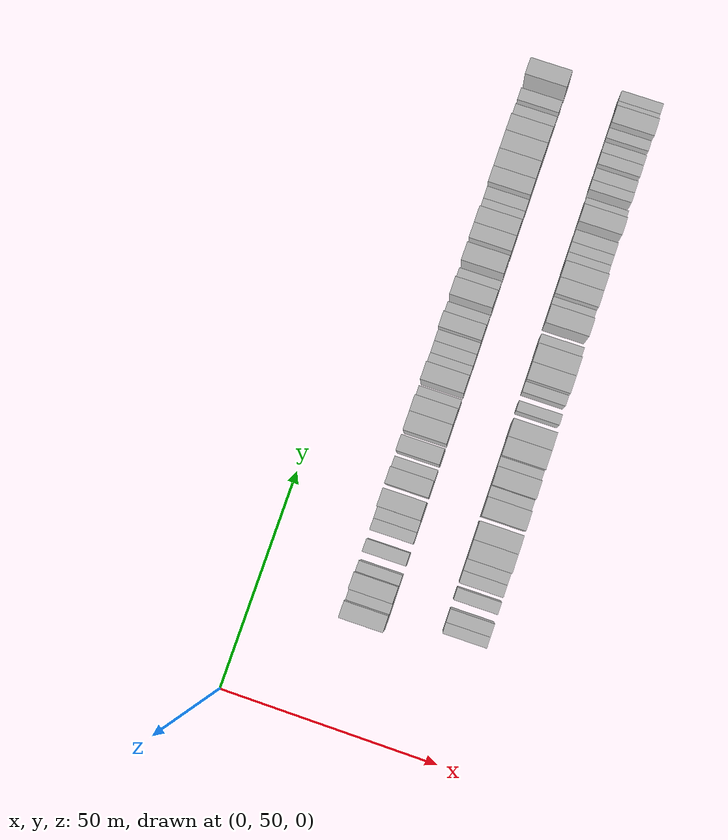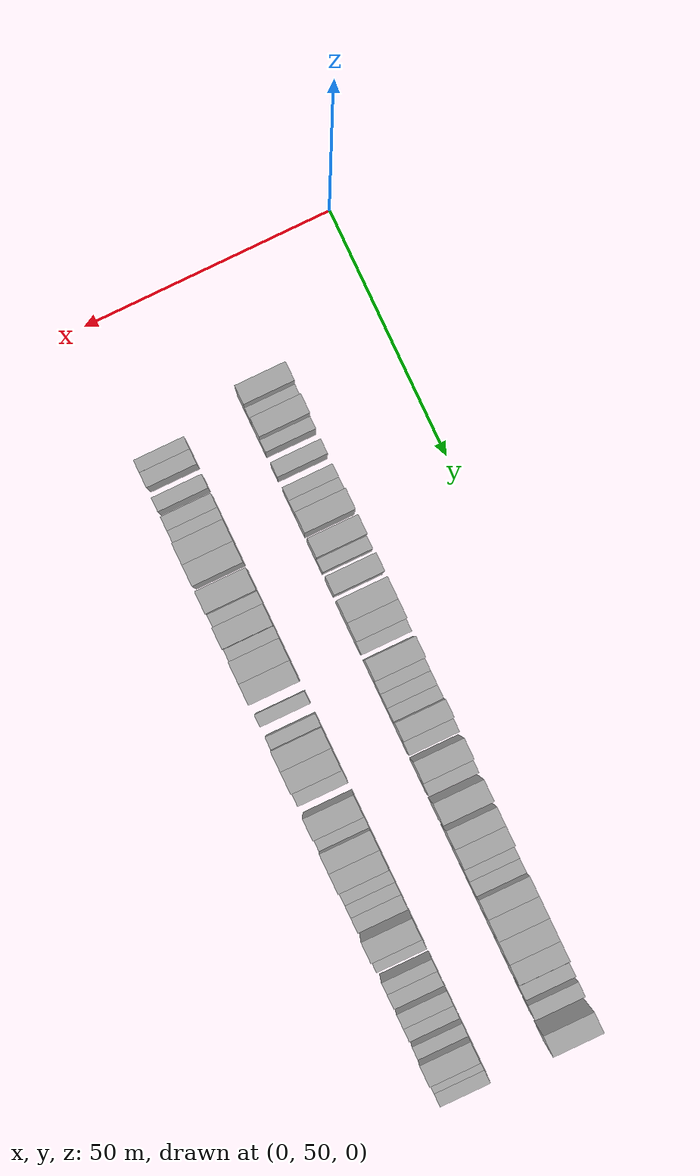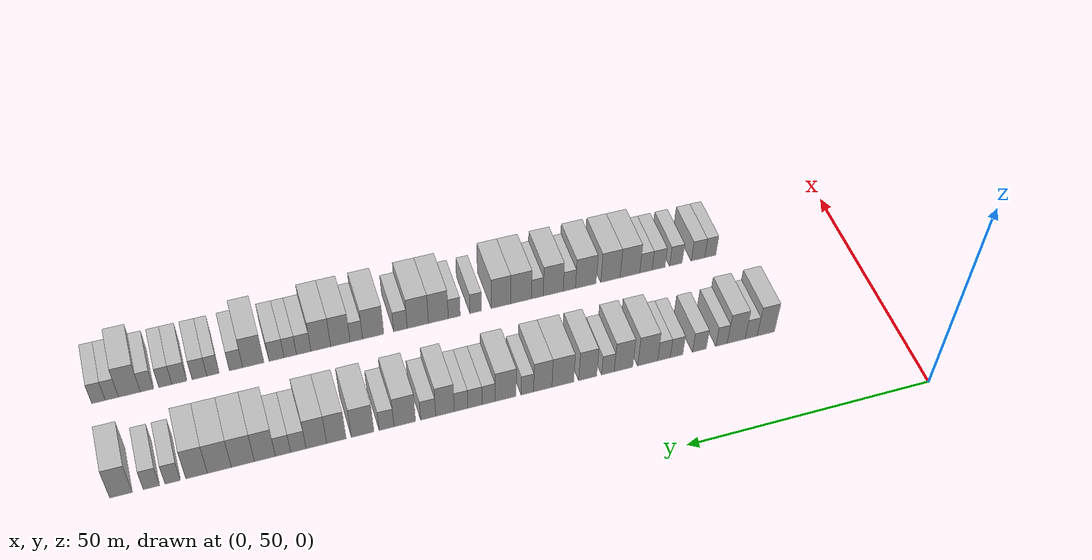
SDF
<sdf version="1.6">
 <world name="default">
  <model name="building_69">
   <static>1</static>
   <pose>25.0000 75.5488 0 0.000000 0.000000 0.000000</pose>
   <link name="link">
    <pose>0 0 4.50 0 0 0</pose>
    <collision name="collision"><geometry><box><size>10.0000 3.7149 9.0000</size></box></geometry></collision>
    <visual name="visual">
     <cast_shadows>0</cast_shadows>
     <geometry><box><size>10.0000 3.7149 9.0000</size></box></geometry>
     <material>
      <script>
       <uri>model://HANNAS_wall/materials/scripts</uri>
       <uri>model://HANNAS_wall/materials/textures</uri>
       <name>vrc/HANNAS_wall</name>
      </script>
     </material>
    </visual>
   </link>
  </model>
  <model name="building_70">
   <static>1</static>
   <pose>25.0000 78.6993 0 0.000000 0.000000 0.000000</pose>
   <link name="link">
    <pose>0 0 3.00 0 0 0</pose>
    <collision name="collision"><geometry><box><size>10.0000 2.5861 6.0000</size></box></geometry></collision>
    <visual name="visual">
     <cast_shadows>0</cast_shadows>
     <geometry><box><size>10.0000 2.5861 6.0000</size></box></geometry>
     <material>
      <script>
       <uri>model://HANNAS_wall/materials/scripts</uri>
       <uri>model://HANNAS_wall/materials/textures</uri>
       <name>vrc/HANNAS_wall</name>
      </script>
     </material>
    </visual>
   </link>
  </model>
  <model name="building_71">
   <static>1</static>
   <pose>25.0000 81.8857 0 0.000000 0.000000 0.000000</pose>
   <link name="link">
    <pose>0 0 4.50 0 0 0</pose>
    <collision name="collision"><geometry><box><size>10.0000 3.7866 9.0000</size></box></geometry></collision>
    <visual name="visual">
     <cast_shadows>0</cast_shadows>
     <geometry><box><size>10.0000 3.7866 9.0000</size></box></geometry>
     <material>
      <script>
       <uri>model://HANNAS_wall/materials/scripts</uri>
       <uri>model://HANNAS_wall/materials/textures</uri>
       <name>vrc/HANNAS_wall</name>
      </script>
     </material>
    </visual>
   </link>
  </model>
  <model name="building_72">
   <static>1</static>
   <pose>25.0000 84.9985 0 0.000000 0.000000 0.000000</pose>
   <link name="link">
    <pose>0 0 3.00 0 0 0</pose>
    <collision name="collision"><geometry><box><size>10.0000 2.4390 6.0000</size></box></geometry></collision>
    <visual name="visual">
     <cast_shadows>0</cast_shadows>
     <geometry><box><size>10.0000 2.4390 6.0000</size></box></geometry>
     <material>
      <script>
       <uri>model://HANNAS_wall/materials/scripts</uri>
       <uri>model://HANNAS_wall/materials/textures</uri>
       <name>vrc/HANNAS_wall</name>
      </script>
     </material>
    </visual>
   </link>
  </model>
  <model name="building_73">
   <static>1</static>
   <pose>25.0000 89.6909 0 0.000000 0.000000 0.000000</pose>
   <link name="link">
    <pose>0 0 3.00 0 0 0</pose>
    <collision name="collision"><geometry><box><size>10.0000 2.9460 6.0000</size></box></geometry></collision>
    <visual name="visual">
     <cast_shadows>0</cast_shadows>
     <geometry><box><size>10.0000 2.9460 6.0000</size></box></geometry>
     <material>
      <script>
       <uri>model://HANNAS_wall/materials/scripts</uri>
       <uri>model://HANNAS_wall/materials/textures</uri>
       <name>vrc/HANNAS_wall</name>
      </script>
     </material>
    </visual>
   </link>
  </model>
  <model name="building_74">
   <static>1</static>
   <pose>25.0000 94.4838 0 0.000000 0.000000 0.000000</pose>
   <link name="link">
    <pose>0 0 3.00 0 0 0</pose>
    <collision name="collision"><geometry><box><size>10.0000 2.6397 6.0000</size></box></geometry></collision>
    <visual name="visual">
     <cast_shadows>0</cast_shadows>
     <geometry><box><size>10.0000 2.6397 6.0000</size></box></geometry>
     <material>
      <script>
       <uri>model://HANNAS_wall/materials/scripts</uri>
       <uri>model://HANNAS_wall/materials/textures</uri>
       <name>vrc/HANNAS_wall</name>
      </script>
     </material>
    </visual>
   </link>
  </model>
  <model name="building_75">
   <static>1</static>
   <pose>25.0000 97.1282 0 0.000000 0.000000 0.000000</pose>
   <link name="link">
    <pose>0 0 3.00 0 0 0</pose>
    <collision name="collision"><geometry><box><size>10.0000 2.6492 6.0000</size></box></geometry></collision>
    <visual name="visual">
     <cast_shadows>0</cast_shadows>
     <geometry><box><size>10.0000 2.6492 6.0000</size></box></geometry>
     <material>
      <script>
       <uri>model://HANNAS_wall/materials/scripts</uri>
       <uri>model://HANNAS_wall/materials/textures</uri>
       <name>vrc/HANNAS_wall</name>
      </script>
     </material>
    </visual>
   </link>
  </model>
  <model name="building_76">
   <static>1</static>
   <pose>25.0000 100.5202 0 0.000000 0.000000 0.000000</pose>
   <link name="link">
    <pose>0 0 4.50 0 0 0</pose>
    <collision name="collision"><geometry><box><size>10.0000 4.1348 9.0000</size></box></geometry></collision>
    <visual name="visual">
     <cast_shadows>0</cast_shadows>
     <geometry><box><size>10.0000 4.1348 9.0000</size></box></geometry>
     <material>
      <script>
       <uri>model://HANNAS_wall/materials/scripts</uri>
       <uri>model://HANNAS_wall/materials/textures</uri>
       <name>vrc/HANNAS_wall</name>
      </script>
     </material>
    </visual>
   </link>
  </model>
  <model name="building_77">
   <static>1</static>
   <pose>25.0000 105.5133 0 0.000000 0.000000 0.000000</pose>
   <link name="link">
    <pose>0 0 4.50 0 0 0</pose>
    <collision name="collision"><geometry><box><size>10.0000 3.8513 9.0000</size></box></geometry></collision>
    <visual name="visual">
     <cast_shadows>0</cast_shadows>
     <geometry><box><size>10.0000 3.8513 9.0000</size></box></geometry>
     <material>
      <script>
       <uri>model://HANNAS_wall/materials/scripts</uri>
       <uri>model://HANNAS_wall/materials/textures</uri>
       <name>vrc/HANNAS_wall</name>
      </script>
     </material>
    </visual>
   </link>
  </model>
  <model name="building_78">
   <static>1</static>
   <pose>25.0000 108.7378 0 0.000000 0.000000 0.000000</pose>
   <link name="link">
    <pose>0 0 3.00 0 0 0</pose>
    <collision name="collision"><geometry><box><size>10.0000 2.5978 6.0000</size></box></geometry></collision>
    <visual name="visual">
     <cast_shadows>0</cast_shadows>
     <geometry><box><size>10.0000 2.5978 6.0000</size></box></geometry>
     <material>
      <script>
       <uri>model://HANNAS_wall/materials/scripts</uri>
       <uri>model://HANNAS_wall/materials/textures</uri>
       <name>vrc/HANNAS_wall</name>
      </script>
     </material>
    </visual>
   </link>
  </model>
  <model name="building_79">
   <static>1</static>
   <pose>25.0000 112.8844 0 0.000000 0.000000 0.000000</pose>
   <link name="link">
    <pose>0 0 4.50 0 0 0</pose>
    <collision name="collision"><geometry><box><size>10.0000 3.6953 9.0000</size></box></geometry></collision>
    <visual name="visual">
     <cast_shadows>0</cast_shadows>
     <geometry><box><size>10.0000 3.6953 9.0000</size></box></geometry>
     <material>
      <script>
       <uri>model://HANNAS_wall/materials/scripts</uri>
       <uri>model://HANNAS_wall/materials/textures</uri>
       <name>vrc/HANNAS_wall</name>
      </script>
     </material>
    </visual>
   </link>
  </model>
  <model name="building_80">
   <static>1</static>
   <pose>25.0000 117.9491 0 0.000000 0.000000 0.000000</pose>
   <link name="link">
    <pose>0 0 4.50 0 0 0</pose>
    <collision name="collision"><geometry><box><size>10.0000 4.4341 9.0000</size></box></geometry></collision>
    <visual name="visual">
     <cast_shadows>0</cast_shadows>
     <geometry><box><size>10.0000 4.4341 9.0000</size></box></geometry>
     <material>
      <script>
       <uri>model://HANNAS_wall/materials/scripts</uri>
       <uri>model://HANNAS_wall/materials/textures</uri>
       <name>vrc/HANNAS_wall</name>
      </script>
     </material>
    </visual>
   </link>
  </model>
  <model name="building_81">
   <static>1</static>
   <pose>25.0000 122.0289 0 0.000000 0.000000 0.000000</pose>
   <link name="link">
    <pose>0 0 4.50 0 0 0</pose>
    <collision name="collision"><geometry><box><size>10.0000 3.7254 9.0000</size></box></geometry></collision>
    <visual name="visual">
     <cast_shadows>0</cast_shadows>
     <geometry><box><size>10.0000 3.7254 9.0000</size></box></geometry>
     <material>
      <script>
       <uri>model://HANNAS_wall/materials/scripts</uri>
       <uri>model://HANNAS_wall/materials/textures</uri>
       <name>vrc/HANNAS_wall</name>
      </script>
     </material>
    </visual>
   </link>
  </model>
  <model name="building_82">
   <static>1</static>
   <pose>25.0000 125.1453 0 0.000000 0.000000 0.000000</pose>
   <link name="link">
    <pose>0 0 3.00 0 0 0</pose>
    <collision name="collision"><geometry><box><size>10.0000 2.5073 6.0000</size></box></geometry></collision>
    <visual name="visual">
     <cast_shadows>0</cast_shadows>
     <geometry><box><size>10.0000 2.5073 6.0000</size></box></geometry>
     <material>
      <script>
       <uri>model://HANNAS_wall/materials/scripts</uri>
       <uri>model://HANNAS_wall/materials/textures</uri>
       <name>vrc/HANNAS_wall</name>
      </script>
     </material>
    </visual>
   </link>
  </model>
  <model name="building_83">
   <static>1</static>
   <pose>25.0000 129.4987 0 0.000000 0.000000 0.000000</pose>
   <link name="link">
    <pose>0 0 4.50 0 0 0</pose>
    <collision name="collision"><geometry><box><size>10.0000 4.1995 9.0000</size></box></geometry></collision>
    <visual name="visual">
     <cast_shadows>0</cast_shadows>
     <geometry><box><size>10.0000 4.1995 9.0000</size></box></geometry>
     <material>
      <script>
       <uri>model://HANNAS_wall/materials/scripts</uri>
       <uri>model://HANNAS_wall/materials/textures</uri>
       <name>vrc/HANNAS_wall</name>
      </script>
     </material>
    </visual>
   </link>
  </model>
  <model name="building_84">
   <static>1</static>
   <pose>25.0000 132.9081 0 0.000000 0.000000 0.000000</pose>
   <link name="link">
    <pose>0 0 3.00 0 0 0</pose>
    <collision name="collision"><geometry><box><size>10.0000 2.6191 6.0000</size></box></geometry></collision>
    <visual name="visual">
     <cast_shadows>0</cast_shadows>
     <geometry><box><size>10.0000 2.6191 6.0000</size></box></geometry>
     <material>
      <script>
       <uri>model://HANNAS_wall/materials/scripts</uri>
       <uri>model://HANNAS_wall/materials/textures</uri>
       <name>vrc/HANNAS_wall</name>
      </script>
     </material>
    </visual>
   </link>
  </model>
  <model name="building_85">
   <static>1</static>
   <pose>25.0000 135.6210 0 0.000000 0.000000 0.000000</pose>
   <link name="link">
    <pose>0 0 3.00 0 0 0</pose>
    <collision name="collision"><geometry><box><size>10.0000 2.8068 6.0000</size></box></geometry></collision>
    <visual name="visual">
     <cast_shadows>0</cast_shadows>
     <geometry><box><size>10.0000 2.8068 6.0000</size></box></geometry>
     <material>
      <script>
       <uri>model://HANNAS_wall/materials/scripts</uri>
       <uri>model://HANNAS_wall/materials/textures</uri>
       <name>vrc/HANNAS_wall</name>
      </script>
     </material>
    </visual>
   </link>
  </model>
  <model name="building_86">
   <static>1</static>
   <pose>25.0000 138.3724 0 0.000000 0.000000 0.000000</pose>
   <link name="link">
    <pose>0 0 3.00 0 0 0</pose>
    <collision name="collision"><geometry><box><size>10.0000 2.6960 6.0000</size></box></geometry></collision>
    <visual name="visual">
     <cast_shadows>0</cast_shadows>
     <geometry><box><size>10.0000 2.6960 6.0000</size></box></geometry>
     <material>
      <script>
       <uri>model://HANNAS_wall/materials/scripts</uri>
       <uri>model://HANNAS_wall/materials/textures</uri>
       <name>vrc/HANNAS_wall</name>
      </script>
     </material>
    </visual>
   </link>
  </model>
  <model name="building_87">
   <static>1</static>
   <pose>25.0000 141.5577 0 0.000000 0.000000 0.000000</pose>
   <link name="link">
    <pose>0 0 4.50 0 0 0</pose>
    <collision name="collision"><geometry><box><size>10.0000 3.6747 9.0000</size></box></geometry></collision>
    <visual name="visual">
     <cast_shadows>0</cast_shadows>
     <geometry><box><size>10.0000 3.6747 9.0000</size></box></geometry>
     <material>
      <script>
       <uri>model://HANNAS_wall/materials/scripts</uri>
       <uri>model://HANNAS_wall/materials/textures</uri>
       <name>vrc/HANNAS_wall</name>
      </script>
     </material>
    </visual>
   </link>
  </model>
  <model name="building_88">
   <static>1</static>
   <pose>25.0000 144.8719 0 0.000000 0.000000 0.000000</pose>
   <link name="link">
    <pose>0 0 3.00 0 0 0</pose>
    <collision name="collision"><geometry><box><size>10.0000 2.9536 6.0000</size></box></geometry></collision>
    <visual name="visual">
     <cast_shadows>0</cast_shadows>
     <geometry><box><size>10.0000 2.9536 6.0000</size></box></geometry>
     <material>
      <script>
       <uri>model://HANNAS_wall/materials/scripts</uri>
       <uri>model://HANNAS_wall/materials/textures</uri>
       <name>vrc/HANNAS_wall</name>
      </script>
     </material>
    </visual>
   </link>
  </model>
  <model name="building_89">
   <static>1</static>
   <pose>25.0000 149.4651 0 0.000000 0.000000 0.000000</pose>
   <link name="link">
    <pose>0 0 4.50 0 0 0</pose>
    <collision name="collision"><geometry><box><size>10.0000 4.2328 9.0000</size></box></geometry></collision>
    <visual name="visual">
     <cast_shadows>0</cast_shadows>
     <geometry><box><size>10.0000 4.2328 9.0000</size></box></geometry>
     <material>
      <script>
       <uri>model://HANNAS_wall/materials/scripts</uri>
       <uri>model://HANNAS_wall/materials/textures</uri>
       <name>vrc/HANNAS_wall</name>
      </script>
     </material>
    </visual>
   </link>
  </model>
  <model name="building_90">
   <static>1</static>
   <pose>25.0000 153.0241 0 0.000000 0.000000 0.000000</pose>
   <link name="link">
    <pose>0 0 3.00 0 0 0</pose>
    <collision name="collision"><geometry><box><size>10.0000 2.8851 6.0000</size></box></geometry></collision>
    <visual name="visual">
     <cast_shadows>0</cast_shadows>
     <geometry><box><size>10.0000 2.8851 6.0000</size></box></geometry>
     <material>
      <script>
       <uri>model://HANNAS_wall/materials/scripts</uri>
       <uri>model://HANNAS_wall/materials/textures</uri>
       <name>vrc/HANNAS_wall</name>
      </script>
     </material>
    </visual>
   </link>
  </model>
  <model name="building_91">
   <static>1</static>
   <pose>25.0000 157.6542 0 0.000000 0.000000 0.000000</pose>
   <link name="link">
    <pose>0 0 4.50 0 0 0</pose>
    <collision name="collision"><geometry><box><size>10.0000 4.3752 9.0000</size></box></geometry></collision>
    <visual name="visual">
     <cast_shadows>0</cast_shadows>
     <geometry><box><size>10.0000 4.3752 9.0000</size></box></geometry>
     <material>
      <script>
       <uri>model://HANNAS_wall/materials/scripts</uri>
       <uri>model://HANNAS_wall/materials/textures</uri>
       <name>vrc/HANNAS_wall</name>
      </script>
     </material>
    </visual>
   </link>
  </model>
  <model name="building_92">
   <static>1</static>
   <pose>25.0000 162.7109 0 0.000000 0.000000 0.000000</pose>
   <link name="link">
    <pose>0 0 4.50 0 0 0</pose>
    <collision name="collision"><geometry><box><size>10.0000 3.7382 9.0000</size></box></geometry></collision>
    <visual name="visual">
     <cast_shadows>0</cast_shadows>
     <geometry><box><size>10.0000 3.7382 9.0000</size></box></geometry>
     <material>
      <script>
       <uri>model://HANNAS_wall/materials/scripts</uri>
       <uri>model://HANNAS_wall/materials/textures</uri>
       <name>vrc/HANNAS_wall</name>
      </script>
     </material>
    </visual>
   </link>
  </model>
  <model name="building_93">
   <static>1</static>
   <pose>25.0000 166.5499 0 0.000000 0.000000 0.000000</pose>
   <link name="link">
    <pose>0 0 4.50 0 0 0</pose>
    <collision name="collision"><geometry><box><size>10.0000 3.9398 9.0000</size></box></geometry></collision>
    <visual name="visual">
     <cast_shadows>0</cast_shadows>
     <geometry><box><size>10.0000 3.9398 9.0000</size></box></geometry>
     <material>
      <script>
       <uri>model://HANNAS_wall/materials/scripts</uri>
       <uri>model://HANNAS_wall/materials/textures</uri>
       <name>vrc/HANNAS_wall</name>
      </script>
     </material>
    </visual>
   </link>
  </model>
  <model name="building_94">
   <static>1</static>
   <pose>25.0000 169.9894 0 0.000000 0.000000 0.000000</pose>
   <link name="link">
    <pose>0 0 3.00 0 0 0</pose>
    <collision name="collision"><geometry><box><size>10.0000 2.9391 6.0000</size></box></geometry></collision>
    <visual name="visual">
     <cast_shadows>0</cast_shadows>
     <geometry><box><size>10.0000 2.9391 6.0000</size></box></geometry>
     <material>
      <script>
       <uri>model://HANNAS_wall/materials/scripts</uri>
       <uri>model://HANNAS_wall/materials/textures</uri>
       <name>vrc/HANNAS_wall</name>
      </script>
     </material>
    </visual>
   </link>
  </model>
  <model name="building_95">
   <static>1</static>
   <pose>25.0000 172.9078 0 0.000000 0.000000 0.000000</pose>
   <link name="link">
    <pose>0 0 3.00 0 0 0</pose>
    <collision name="collision"><geometry><box><size>10.0000 2.8978 6.0000</size></box></geometry></collision>
    <visual name="visual">
     <cast_shadows>0</cast_shadows>
     <geometry><box><size>10.0000 2.8978 6.0000</size></box></geometry>
     <material>
      <script>
       <uri>model://HANNAS_wall/materials/scripts</uri>
       <uri>model://HANNAS_wall/materials/textures</uri>
       <name>vrc/HANNAS_wall</name>
      </script>
     </material>
    </visual>
   </link>
  </model>
  <model name="building_96">
   <static>1</static>
   <pose>25.0000 176.3330 0 0.000000 0.000000 0.000000</pose>
   <link name="link">
    <pose>0 0 4.50 0 0 0</pose>
    <collision name="collision"><geometry><box><size>10.0000 3.9526 9.0000</size></box></geometry></collision>
    <visual name="visual">
     <cast_shadows>0</cast_shadows>
     <geometry><box><size>10.0000 3.9526 9.0000</size></box></geometry>
     <material>
      <script>
       <uri>model://HANNAS_wall/materials/scripts</uri>
       <uri>model://HANNAS_wall/materials/textures</uri>
       <name>vrc/HANNAS_wall</name>
      </script>
     </material>
    </visual>
   </link>
  </model>
  <model name="building_97">
   <static>1</static>
   <pose>25.0000 180.4647 0 0.000000 0.000000 0.000000</pose>
   <link name="link">
    <pose>0 0 4.50 0 0 0</pose>
    <collision name="collision"><geometry><box><size>10.0000 4.3108 9.0000</size></box></geometry></collision>
    <visual name="visual">
     <cast_shadows>0</cast_shadows>
     <geometry><box><size>10.0000 4.3108 9.0000</size></box></geometry>
     <material>
      <script>
       <uri>model://HANNAS_wall/materials/scripts</uri>
       <uri>model://HANNAS_wall/materials/textures</uri>
       <name>vrc/HANNAS_wall</name>
      </script>
     </material>
    </visual>
   </link>
  </model>
  <model name="building_98">
   <static>1</static>
   <pose>25.0000 184.8574 0 0.000000 0.000000 0.000000</pose>
   <link name="link">
    <pose>0 0 4.50 0 0 0</pose>
    <collision name="collision"><geometry><box><size>10.0000 4.4746 9.0000</size></box></geometry></collision>
    <visual name="visual">
     <cast_shadows>0</cast_shadows>
     <geometry><box><size>10.0000 4.4746 9.0000</size></box></geometry>
     <material>
      <script>
       <uri>model://HANNAS_wall/materials/scripts</uri>
       <uri>model://HANNAS_wall/materials/textures</uri>
       <name>vrc/HANNAS_wall</name>
      </script>
     </material>
    </visual>
   </link>
  </model>
  <model name="building_99">
   <static>1</static>
   <pose>25.0000 189.1024 0 0.000000 0.000000 0.000000</pose>
   <link name="link">
    <pose>0 0 4.50 0 0 0</pose>
    <collision name="collision"><geometry><box><size>10.0000 4.0156 9.0000</size></box></geometry></collision>
    <visual name="visual">
     <cast_shadows>0</cast_shadows>
     <geometry><box><size>10.0000 4.0156 9.0000</size></box></geometry>
     <material>
      <script>
       <uri>model://HANNAS_wall/materials/scripts</uri>
       <uri>model://HANNAS_wall/materials/textures</uri>
       <name>vrc/HANNAS_wall</name>
      </script>
     </material>
    </visual>
   </link>
  </model>
  <model name="building_100">
   <static>1</static>
   <pose>25.0000 193.5370 0 0.000000 0.000000 0.000000</pose>
   <link name="link">
    <pose>0 0 3.00 0 0 0</pose>
    <collision name="collision"><geometry><box><size>10.0000 2.8535 6.0000</size></box></geometry></collision>
    <visual name="visual">
     <cast_shadows>0</cast_shadows>
     <geometry><box><size>10.0000 2.8535 6.0000</size></box></geometry>
     <material>
      <script>
       <uri>model://HANNAS_wall/materials/scripts</uri>
       <uri>model://HANNAS_wall/materials/textures</uri>
       <name>vrc/HANNAS_wall</name>
      </script>
     </material>
    </visual>
   </link>
  </model>
  <model name="building_101">
   <static>1</static>
   <pose>25.0000 197.4585 0 0.000000 0.000000 0.000000</pose>
   <link name="link">
    <pose>0 0 3.00 0 0 0</pose>
    <collision name="collision"><geometry><box><size>10.0000 2.9895 6.0000</size></box></geometry></collision>
    <visual name="visual">
     <cast_shadows>0</cast_shadows>
     <geometry><box><size>10.0000 2.9895 6.0000</size></box></geometry>
     <material>
      <script>
       <uri>model://HANNAS_wall/materials/scripts</uri>
       <uri>model://HANNAS_wall/materials/textures</uri>
       <name>vrc/HANNAS_wall</name>
      </script>
     </material>
    </visual>
   </link>
  </model>
  <model name="building_102">
   <static>1</static>
   <pose>25.0000 203.0238 0 0.000000 0.000000 0.000000</pose>
   <link name="link">
    <pose>0 0 4.50 0 0 0</pose>
    <collision name="collision"><geometry><box><size>10.0000 4.1412 9.0000</size></box></geometry></collision>
    <visual name="visual">
     <cast_shadows>0</cast_shadows>
     <geometry><box><size>10.0000 4.1412 9.0000</size></box></geometry>
     <material>
      <script>
       <uri>model://HANNAS_wall/materials/scripts</uri>
       <uri>model://HANNAS_wall/materials/textures</uri>
       <name>vrc/HANNAS_wall</name>
      </script>
     </material>
    </visual>
   </link>
  </model>
  <model name="building_172">
   <static>1</static>
   <pose>47.0000 78.5723 0 0.000000 0.000000 0.000000</pose>
   <link name="link">
    <pose>0 0 3.00 0 0 0</pose>
    <collision name="collision"><geometry><box><size>10.0000 2.4706 6.0000</size></box></geometry></collision>
    <visual name="visual">
     <cast_shadows>0</cast_shadows>
     <geometry><box><size>10.0000 2.4706 6.0000</size></box></geometry>
     <material>
      <script>
       <uri>model://HANNAS_wall/materials/scripts</uri>
       <uri>model://HANNAS_wall/materials/textures</uri>
       <name>vrc/HANNAS_wall</name>
      </script>
     </material>
    </visual>
   </link>
  </model>
  <model name="building_173">
   <static>1</static>
   <pose>47.0000 81.2968 0 0.000000 0.000000 0.000000</pose>
   <link name="link">
    <pose>0 0 3.00 0 0 0</pose>
    <collision name="collision"><geometry><box><size>10.0000 2.9782 6.0000</size></box></geometry></collision>
    <visual name="visual">
     <cast_shadows>0</cast_shadows>
     <geometry><box><size>10.0000 2.9782 6.0000</size></box></geometry>
     <material>
      <script>
       <uri>model://HANNAS_wall/materials/scripts</uri>
       <uri>model://HANNAS_wall/materials/textures</uri>
       <name>vrc/HANNAS_wall</name>
      </script>
     </material>
    </visual>
   </link>
  </model>
  <model name="building_174">
   <static>1</static>
   <pose>47.0000 86.1743 0 0.000000 0.000000 0.000000</pose>
   <link name="link">
    <pose>0 0 3.00 0 0 0</pose>
    <collision name="collision"><geometry><box><size>10.0000 2.7769 6.0000</size></box></geometry></collision>
    <visual name="visual">
     <cast_shadows>0</cast_shadows>
     <geometry><box><size>10.0000 2.7769 6.0000</size></box></geometry>
     <material>
      <script>
       <uri>model://HANNAS_wall/materials/scripts</uri>
       <uri>model://HANNAS_wall/materials/textures</uri>
       <name>vrc/HANNAS_wall</name>
      </script>
     </material>
    </visual>
   </link>
  </model>
  <model name="building_175">
   <static>1</static>
   <pose>47.0000 89.9673 0 0.000000 0.000000 0.000000</pose>
   <link name="link">
    <pose>0 0 3.00 0 0 0</pose>
    <collision name="collision"><geometry><box><size>10.0000 2.8089 6.0000</size></box></geometry></collision>
    <visual name="visual">
     <cast_shadows>0</cast_shadows>
     <geometry><box><size>10.0000 2.8089 6.0000</size></box></geometry>
     <material>
      <script>
       <uri>model://HANNAS_wall/materials/scripts</uri>
       <uri>model://HANNAS_wall/materials/textures</uri>
       <name>vrc/HANNAS_wall</name>
      </script>
     </material>
    </visual>
   </link>
  </model>
  <model name="building_176">
   <static>1</static>
   <pose>47.0000 92.7350 0 0.000000 0.000000 0.000000</pose>
   <link name="link">
    <pose>0 0 3.00 0 0 0</pose>
    <collision name="collision"><geometry><box><size>10.0000 2.7266 6.0000</size></box></geometry></collision>
    <visual name="visual">
     <cast_shadows>0</cast_shadows>
     <geometry><box><size>10.0000 2.7266 6.0000</size></box></geometry>
     <material>
      <script>
       <uri>model://HANNAS_wall/materials/scripts</uri>
       <uri>model://HANNAS_wall/materials/textures</uri>
       <name>vrc/HANNAS_wall</name>
      </script>
     </material>
    </visual>
   </link>
  </model>
  <model name="building_177">
   <static>1</static>
   <pose>47.0000 96.2302 0 0.000000 0.000000 0.000000</pose>
   <link name="link">
    <pose>0 0 4.50 0 0 0</pose>
    <collision name="collision"><geometry><box><size>10.0000 4.2637 9.0000</size></box></geometry></collision>
    <visual name="visual">
     <cast_shadows>0</cast_shadows>
     <geometry><box><size>10.0000 4.2637 9.0000</size></box></geometry>
     <material>
      <script>
       <uri>model://HANNAS_wall/materials/scripts</uri>
       <uri>model://HANNAS_wall/materials/textures</uri>
       <name>vrc/HANNAS_wall</name>
      </script>
     </material>
    </visual>
   </link>
  </model>
  <model name="building_178">
   <static>1</static>
   <pose>47.0000 100.4563 0 0.000000 0.000000 0.000000</pose>
   <link name="link">
    <pose>0 0 4.50 0 0 0</pose>
    <collision name="collision"><geometry><box><size>10.0000 4.1886 9.0000</size></box></geometry></collision>
    <visual name="visual">
     <cast_shadows>0</cast_shadows>
     <geometry><box><size>10.0000 4.1886 9.0000</size></box></geometry>
     <material>
      <script>
       <uri>model://HANNAS_wall/materials/scripts</uri>
       <uri>model://HANNAS_wall/materials/textures</uri>
       <name>vrc/HANNAS_wall</name>
      </script>
     </material>
    </visual>
   </link>
  </model>
  <model name="building_179">
   <static>1</static>
   <pose>47.0000 105.7698 0 0.000000 0.000000 0.000000</pose>
   <link name="link">
    <pose>0 0 4.50 0 0 0</pose>
    <collision name="collision"><geometry><box><size>10.0000 4.4383 9.0000</size></box></geometry></collision>
    <visual name="visual">
     <cast_shadows>0</cast_shadows>
     <geometry><box><size>10.0000 4.4383 9.0000</size></box></geometry>
     <material>
      <script>
       <uri>model://HANNAS_wall/materials/scripts</uri>
       <uri>model://HANNAS_wall/materials/textures</uri>
       <name>vrc/HANNAS_wall</name>
      </script>
     </material>
    </visual>
   </link>
  </model>
  <model name="building_180">
   <static>1</static>
   <pose>47.0000 109.3068 0 0.000000 0.000000 0.000000</pose>
   <link name="link">
    <pose>0 0 3.00 0 0 0</pose>
    <collision name="collision"><geometry><box><size>10.0000 2.6358 6.0000</size></box></geometry></collision>
    <visual name="visual">
     <cast_shadows>0</cast_shadows>
     <geometry><box><size>10.0000 2.6358 6.0000</size></box></geometry>
     <material>
      <script>
       <uri>model://HANNAS_wall/materials/scripts</uri>
       <uri>model://HANNAS_wall/materials/textures</uri>
       <name>vrc/HANNAS_wall</name>
      </script>
     </material>
    </visual>
   </link>
  </model>
  <model name="building_181">
   <static>1</static>
   <pose>47.0000 112.7660 0 0.000000 0.000000 0.000000</pose>
   <link name="link">
    <pose>0 0 4.50 0 0 0</pose>
    <collision name="collision"><geometry><box><size>10.0000 4.2825 9.0000</size></box></geometry></collision>
    <visual name="visual">
     <cast_shadows>0</cast_shadows>
     <geometry><box><size>10.0000 4.2825 9.0000</size></box></geometry>
     <material>
      <script>
       <uri>model://HANNAS_wall/materials/scripts</uri>
       <uri>model://HANNAS_wall/materials/textures</uri>
       <name>vrc/HANNAS_wall</name>
      </script>
     </material>
    </visual>
   </link>
  </model>
  <model name="building_182">
   <static>1</static>
   <pose>47.0000 116.1290 0 0.000000 0.000000 0.000000</pose>
   <link name="link">
    <pose>0 0 3.00 0 0 0</pose>
    <collision name="collision"><geometry><box><size>10.0000 2.4434 6.0000</size></box></geometry></collision>
    <visual name="visual">
     <cast_shadows>0</cast_shadows>
     <geometry><box><size>10.0000 2.4434 6.0000</size></box></geometry>
     <material>
      <script>
       <uri>model://HANNAS_wall/materials/scripts</uri>
       <uri>model://HANNAS_wall/materials/textures</uri>
       <name>vrc/HANNAS_wall</name>
      </script>
     </material>
    </visual>
   </link>
  </model>
  <model name="building_183">
   <static>1</static>
   <pose>47.0000 119.5301 0 0.000000 0.000000 0.000000</pose>
   <link name="link">
    <pose>0 0 4.50 0 0 0</pose>
    <collision name="collision"><geometry><box><size>10.0000 4.3588 9.0000</size></box></geometry></collision>
    <visual name="visual">
     <cast_shadows>0</cast_shadows>
     <geometry><box><size>10.0000 4.3588 9.0000</size></box></geometry>
     <material>
      <script>
       <uri>model://HANNAS_wall/materials/scripts</uri>
       <uri>model://HANNAS_wall/materials/textures</uri>
       <name>vrc/HANNAS_wall</name>
      </script>
     </material>
    </visual>
   </link>
  </model>
  <model name="building_184">
   <static>1</static>
   <pose>47.0000 123.7769 0 0.000000 0.000000 0.000000</pose>
   <link name="link">
    <pose>0 0 4.50 0 0 0</pose>
    <collision name="collision"><geometry><box><size>10.0000 4.1349 9.0000</size></box></geometry></collision>
    <visual name="visual">
     <cast_shadows>0</cast_shadows>
     <geometry><box><size>10.0000 4.1349 9.0000</size></box></geometry>
     <material>
      <script>
       <uri>model://HANNAS_wall/materials/scripts</uri>
       <uri>model://HANNAS_wall/materials/textures</uri>
       <name>vrc/HANNAS_wall</name>
      </script>
     </material>
    </visual>
   </link>
  </model>
  <model name="building_185">
   <static>1</static>
   <pose>47.0000 129.0733 0 0.000000 0.000000 0.000000</pose>
   <link name="link">
    <pose>0 0 3.00 0 0 0</pose>
    <collision name="collision"><geometry><box><size>10.0000 2.4579 6.0000</size></box></geometry></collision>
    <visual name="visual">
     <cast_shadows>0</cast_shadows>
     <geometry><box><size>10.0000 2.4579 6.0000</size></box></geometry>
     <material>
      <script>
       <uri>model://HANNAS_wall/materials/scripts</uri>
       <uri>model://HANNAS_wall/materials/textures</uri>
       <name>vrc/HANNAS_wall</name>
      </script>
     </material>
    </visual>
   </link>
  </model>
  <model name="building_186">
   <static>1</static>
   <pose>47.0000 133.5544 0 0.000000 0.000000 0.000000</pose>
   <link name="link">
    <pose>0 0 3.00 0 0 0</pose>
    <collision name="collision"><geometry><box><size>10.0000 2.5043 6.0000</size></box></geometry></collision>
    <visual name="visual">
     <cast_shadows>0</cast_shadows>
     <geometry><box><size>10.0000 2.5043 6.0000</size></box></geometry>
     <material>
      <script>
       <uri>model://HANNAS_wall/materials/scripts</uri>
       <uri>model://HANNAS_wall/materials/textures</uri>
       <name>vrc/HANNAS_wall</name>
      </script>
     </material>
    </visual>
   </link>
  </model>
  <model name="building_187">
   <static>1</static>
   <pose>47.0000 136.8566 0 0.000000 0.000000 0.000000</pose>
   <link name="link">
    <pose>0 0 4.50 0 0 0</pose>
    <collision name="collision"><geometry><box><size>10.0000 4.1001 9.0000</size></box></geometry></collision>
    <visual name="visual">
     <cast_shadows>0</cast_shadows>
     <geometry><box><size>10.0000 4.1001 9.0000</size></box></geometry>
     <material>
      <script>
       <uri>model://HANNAS_wall/materials/scripts</uri>
       <uri>model://HANNAS_wall/materials/textures</uri>
       <name>vrc/HANNAS_wall</name>
      </script>
     </material>
    </visual>
   </link>
  </model>
  <model name="building_188">
   <static>1</static>
   <pose>47.0000 141.0943 0 0.000000 0.000000 0.000000</pose>
   <link name="link">
    <pose>0 0 4.50 0 0 0</pose>
    <collision name="collision"><geometry><box><size>10.0000 4.3754 9.0000</size></box></geometry></collision>
    <visual name="visual">
     <cast_shadows>0</cast_shadows>
     <geometry><box><size>10.0000 4.3754 9.0000</size></box></geometry>
     <material>
      <script>
       <uri>model://HANNAS_wall/materials/scripts</uri>
       <uri>model://HANNAS_wall/materials/textures</uri>
       <name>vrc/HANNAS_wall</name>
      </script>
     </material>
    </visual>
   </link>
  </model>
  <model name="building_189">
   <static>1</static>
   <pose>47.0000 144.6733 0 0.000000 0.000000 0.000000</pose>
   <link name="link">
    <pose>0 0 3.00 0 0 0</pose>
    <collision name="collision"><geometry><box><size>10.0000 2.7825 6.0000</size></box></geometry></collision>
    <visual name="visual">
     <cast_shadows>0</cast_shadows>
     <geometry><box><size>10.0000 2.7825 6.0000</size></box></geometry>
     <material>
      <script>
       <uri>model://HANNAS_wall/materials/scripts</uri>
       <uri>model://HANNAS_wall/materials/textures</uri>
       <name>vrc/HANNAS_wall</name>
      </script>
     </material>
    </visual>
   </link>
  </model>
  <model name="building_190">
   <static>1</static>
   <pose>47.0000 150.2318 0 0.000000 0.000000 0.000000</pose>
   <link name="link">
    <pose>0 0 4.50 0 0 0</pose>
    <collision name="collision"><geometry><box><size>10.0000 4.3347 9.0000</size></box></geometry></collision>
    <visual name="visual">
     <cast_shadows>0</cast_shadows>
     <geometry><box><size>10.0000 4.3347 9.0000</size></box></geometry>
     <material>
      <script>
       <uri>model://HANNAS_wall/materials/scripts</uri>
       <uri>model://HANNAS_wall/materials/textures</uri>
       <name>vrc/HANNAS_wall</name>
      </script>
     </material>
    </visual>
   </link>
  </model>
  <model name="building_191">
   <static>1</static>
   <pose>47.0000 153.6671 0 0.000000 0.000000 0.000000</pose>
   <link name="link">
    <pose>0 0 3.00 0 0 0</pose>
    <collision name="collision"><geometry><box><size>10.0000 2.5358 6.0000</size></box></geometry></collision>
    <visual name="visual">
     <cast_shadows>0</cast_shadows>
     <geometry><box><size>10.0000 2.5358 6.0000</size></box></geometry>
     <material>
      <script>
       <uri>model://HANNAS_wall/materials/scripts</uri>
       <uri>model://HANNAS_wall/materials/textures</uri>
       <name>vrc/HANNAS_wall</name>
      </script>
     </material>
    </visual>
   </link>
  </model>
  <model name="building_192">
   <static>1</static>
   <pose>47.0000 156.8944 0 0.000000 0.000000 0.000000</pose>
   <link name="link">
    <pose>0 0 4.50 0 0 0</pose>
    <collision name="collision"><geometry><box><size>10.0000 3.9189 9.0000</size></box></geometry></collision>
    <visual name="visual">
     <cast_shadows>0</cast_shadows>
     <geometry><box><size>10.0000 3.9189 9.0000</size></box></geometry>
     <material>
      <script>
       <uri>model://HANNAS_wall/materials/scripts</uri>
       <uri>model://HANNAS_wall/materials/textures</uri>
       <name>vrc/HANNAS_wall</name>
      </script>
     </material>
    </visual>
   </link>
  </model>
  <model name="building_193">
   <static>1</static>
   <pose>47.0000 160.8331 0 0.000000 0.000000 0.000000</pose>
   <link name="link">
    <pose>0 0 4.50 0 0 0</pose>
    <collision name="collision"><geometry><box><size>10.0000 3.9585 9.0000</size></box></geometry></collision>
    <visual name="visual">
     <cast_shadows>0</cast_shadows>
     <geometry><box><size>10.0000 3.9585 9.0000</size></box></geometry>
     <material>
      <script>
       <uri>model://HANNAS_wall/materials/scripts</uri>
       <uri>model://HANNAS_wall/materials/textures</uri>
       <name>vrc/HANNAS_wall</name>
      </script>
     </material>
    </visual>
   </link>
  </model>
  <model name="building_194">
   <static>1</static>
   <pose>47.0000 164.2690 0 0.000000 0.000000 0.000000</pose>
   <link name="link">
    <pose>0 0 3.00 0 0 0</pose>
    <collision name="collision"><geometry><box><size>10.0000 2.9134 6.0000</size></box></geometry></collision>
    <visual name="visual">
     <cast_shadows>0</cast_shadows>
     <geometry><box><size>10.0000 2.9134 6.0000</size></box></geometry>
     <material>
      <script>
       <uri>model://HANNAS_wall/materials/scripts</uri>
       <uri>model://HANNAS_wall/materials/textures</uri>
       <name>vrc/HANNAS_wall</name>
      </script>
     </material>
    </visual>
   </link>
  </model>
  <model name="building_195">
   <static>1</static>
   <pose>47.0000 166.9631 0 0.000000 0.000000 0.000000</pose>
   <link name="link">
    <pose>0 0 3.00 0 0 0</pose>
    <collision name="collision"><geometry><box><size>10.0000 2.4747 6.0000</size></box></geometry></collision>
    <visual name="visual">
     <cast_shadows>0</cast_shadows>
     <geometry><box><size>10.0000 2.4747 6.0000</size></box></geometry>
     <material>
      <script>
       <uri>model://HANNAS_wall/materials/scripts</uri>
       <uri>model://HANNAS_wall/materials/textures</uri>
       <name>vrc/HANNAS_wall</name>
      </script>
     </material>
    </visual>
   </link>
  </model>
  <model name="building_196">
   <static>1</static>
   <pose>47.0000 169.6916 0 0.000000 0.000000 0.000000</pose>
   <link name="link">
    <pose>0 0 3.00 0 0 0</pose>
    <collision name="collision"><geometry><box><size>10.0000 2.9824 6.0000</size></box></geometry></collision>
    <visual name="visual">
     <cast_shadows>0</cast_shadows>
     <geometry><box><size>10.0000 2.9824 6.0000</size></box></geometry>
     <material>
      <script>
       <uri>model://HANNAS_wall/materials/scripts</uri>
       <uri>model://HANNAS_wall/materials/textures</uri>
       <name>vrc/HANNAS_wall</name>
      </script>
     </material>
    </visual>
   </link>
  </model>
  <model name="building_197">
   <static>1</static>
   <pose>47.0000 174.2783 0 0.000000 0.000000 0.000000</pose>
   <link name="link">
    <pose>0 0 4.50 0 0 0</pose>
    <collision name="collision"><geometry><box><size>10.0000 4.1909 9.0000</size></box></geometry></collision>
    <visual name="visual">
     <cast_shadows>0</cast_shadows>
     <geometry><box><size>10.0000 4.1909 9.0000</size></box></geometry>
     <material>
      <script>
       <uri>model://HANNAS_wall/materials/scripts</uri>
       <uri>model://HANNAS_wall/materials/textures</uri>
       <name>vrc/HANNAS_wall</name>
      </script>
     </material>
    </visual>
   </link>
  </model>
  <model name="building_198">
   <static>1</static>
   <pose>47.0000 177.6911 0 0.000000 0.000000 0.000000</pose>
   <link name="link">
    <pose>0 0 3.00 0 0 0</pose>
    <collision name="collision"><geometry><box><size>10.0000 2.6347 6.0000</size></box></geometry></collision>
    <visual name="visual">
     <cast_shadows>0</cast_shadows>
     <geometry><box><size>10.0000 2.6347 6.0000</size></box></geometry>
     <material>
      <script>
       <uri>model://HANNAS_wall/materials/scripts</uri>
       <uri>model://HANNAS_wall/materials/textures</uri>
       <name>vrc/HANNAS_wall</name>
      </script>
     </material>
    </visual>
   </link>
  </model>
  <model name="building_199">
   <static>1</static>
   <pose>47.0000 182.2094 0 0.000000 0.000000 0.000000</pose>
   <link name="link">
    <pose>0 0 3.00 0 0 0</pose>
    <collision name="collision"><geometry><box><size>10.0000 2.4019 6.0000</size></box></geometry></collision>
    <visual name="visual">
     <cast_shadows>0</cast_shadows>
     <geometry><box><size>10.0000 2.4019 6.0000</size></box></geometry>
     <material>
      <script>
       <uri>model://HANNAS_wall/materials/scripts</uri>
       <uri>model://HANNAS_wall/materials/textures</uri>
       <name>vrc/HANNAS_wall</name>
      </script>
     </material>
    </visual>
   </link>
  </model>
  <model name="building_200">
   <static>1</static>
   <pose>47.0000 184.8613 0 0.000000 0.000000 0.000000</pose>
   <link name="link">
    <pose>0 0 3.00 0 0 0</pose>
    <collision name="collision"><geometry><box><size>10.0000 2.9020 6.0000</size></box></geometry></collision>
    <visual name="visual">
     <cast_shadows>0</cast_shadows>
     <geometry><box><size>10.0000 2.9020 6.0000</size></box></geometry>
     <material>
      <script>
       <uri>model://HANNAS_wall/materials/scripts</uri>
       <uri>model://HANNAS_wall/materials/textures</uri>
       <name>vrc/HANNAS_wall</name>
      </script>
     </material>
    </visual>
   </link>
  </model>
  <model name="building_201">
   <static>1</static>
   <pose>47.0000 188.7687 0 0.000000 0.000000 0.000000</pose>
   <link name="link">
    <pose>0 0 3.00 0 0 0</pose>
    <collision name="collision"><geometry><box><size>10.0000 2.9129 6.0000</size></box></geometry></collision>
    <visual name="visual">
     <cast_shadows>0</cast_shadows>
     <geometry><box><size>10.0000 2.9129 6.0000</size></box></geometry>
     <material>
      <script>
       <uri>model://HANNAS_wall/materials/scripts</uri>
       <uri>model://HANNAS_wall/materials/textures</uri>
       <name>vrc/HANNAS_wall</name>
      </script>
     </material>
    </visual>
   </link>
  </model>
  <model name="building_202">
   <static>1</static>
   <pose>47.0000 191.4904 0 0.000000 0.000000 0.000000</pose>
   <link name="link">
    <pose>0 0 3.00 0 0 0</pose>
    <collision name="collision"><geometry><box><size>10.0000 2.5304 6.0000</size></box></geometry></collision>
    <visual name="visual">
     <cast_shadows>0</cast_shadows>
     <geometry><box><size>10.0000 2.5304 6.0000</size></box></geometry>
     <material>
      <script>
       <uri>model://HANNAS_wall/materials/scripts</uri>
       <uri>model://HANNAS_wall/materials/textures</uri>
       <name>vrc/HANNAS_wall</name>
      </script>
     </material>
    </visual>
   </link>
  </model>
  <model name="building_203">
   <static>1</static>
   <pose>47.0000 195.0362 0 0.000000 0.000000 0.000000</pose>
   <link name="link">
    <pose>0 0 3.00 0 0 0</pose>
    <collision name="collision"><geometry><box><size>10.0000 2.5614 6.0000</size></box></geometry></collision>
    <visual name="visual">
     <cast_shadows>0</cast_shadows>
     <geometry><box><size>10.0000 2.5614 6.0000</size></box></geometry>
     <material>
      <script>
       <uri>model://HANNAS_wall/materials/scripts</uri>
       <uri>model://HANNAS_wall/materials/textures</uri>
       <name>vrc/HANNAS_wall</name>
      </script>
     </material>
    </visual>
   </link>
  </model>
  <model name="building_204">
   <static>1</static>
   <pose>47.0000 198.4230 0 0.000000 0.000000 0.000000</pose>
   <link name="link">
    <pose>0 0 4.50 0 0 0</pose>
    <collision name="collision"><geometry><box><size>10.0000 4.2121 9.0000</size></box></geometry></collision>
    <visual name="visual">
     <cast_shadows>0</cast_shadows>
     <geometry><box><size>10.0000 4.2121 9.0000</size></box></geometry>
     <material>
      <script>
       <uri>model://HANNAS_wall/materials/scripts</uri>
       <uri>model://HANNAS_wall/materials/textures</uri>
       <name>vrc/HANNAS_wall</name>
      </script>
     </material>
    </visual>
   </link>
  </model>
  <model name="building_205">
   <static>1</static>
   <pose>47.0000 201.7836 0 0.000000 0.000000 0.000000</pose>
   <link name="link">
    <pose>0 0 3.00 0 0 0</pose>
    <collision name="collision"><geometry><box><size>10.0000 2.5091 6.0000</size></box></geometry></collision>
    <visual name="visual">
     <cast_shadows>0</cast_shadows>
     <geometry><box><size>10.0000 2.5091 6.0000</size></box></geometry>
     <material>
      <script>
       <uri>model://HANNAS_wall/materials/scripts</uri>
       <uri>model://HANNAS_wall/materials/textures</uri>
       <name>vrc/HANNAS_wall</name>
      </script>
     </material>
    </visual>
   </link>
  </model>
  <model name="building_206">
   <static>1</static>
   <pose>47.0000 204.3373 0 0.000000 0.000000 0.000000</pose>
   <link name="link">
    <pose>0 0 3.00 0 0 0</pose>
    <collision name="collision"><geometry><box><size>10.0000 2.5984 6.0000</size></box></geometry></collision>
    <visual name="visual">
     <cast_shadows>0</cast_shadows>
     <geometry><box><size>10.0000 2.5984 6.0000</size></box></geometry>
     <material>
      <script>
       <uri>model://HANNAS_wall/materials/scripts</uri>
       <uri>model://HANNAS_wall/materials/textures</uri>
       <name>vrc/HANNAS_wall</name>
      </script>
     </material>
    </visual>
   </link>
  </model>
 </world>
</sdf>
